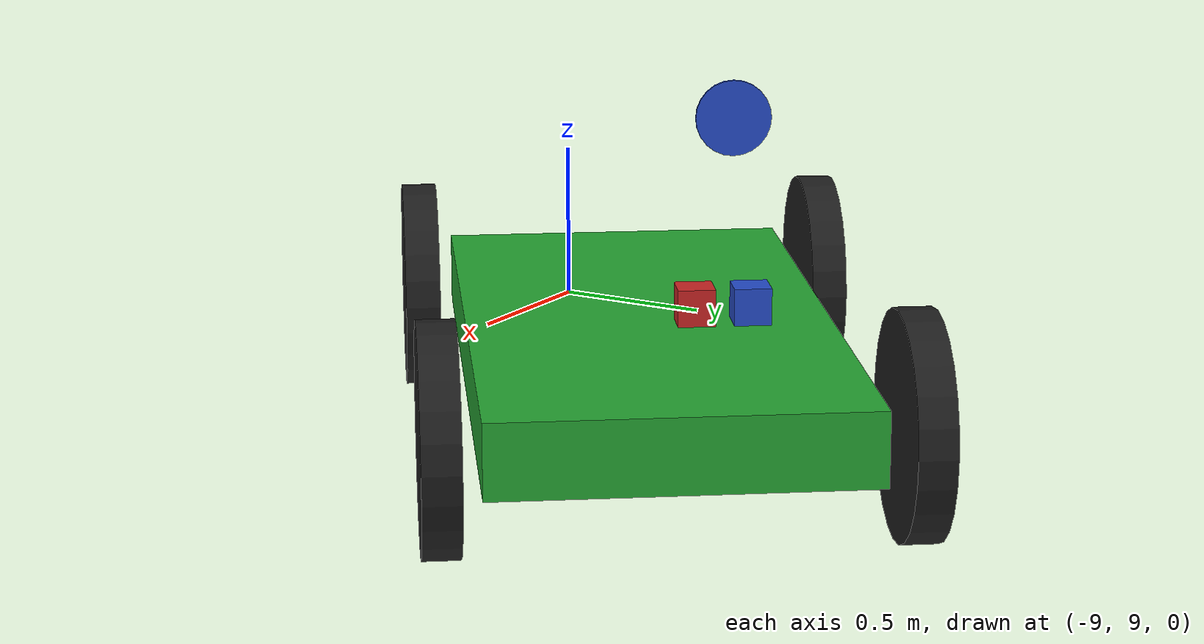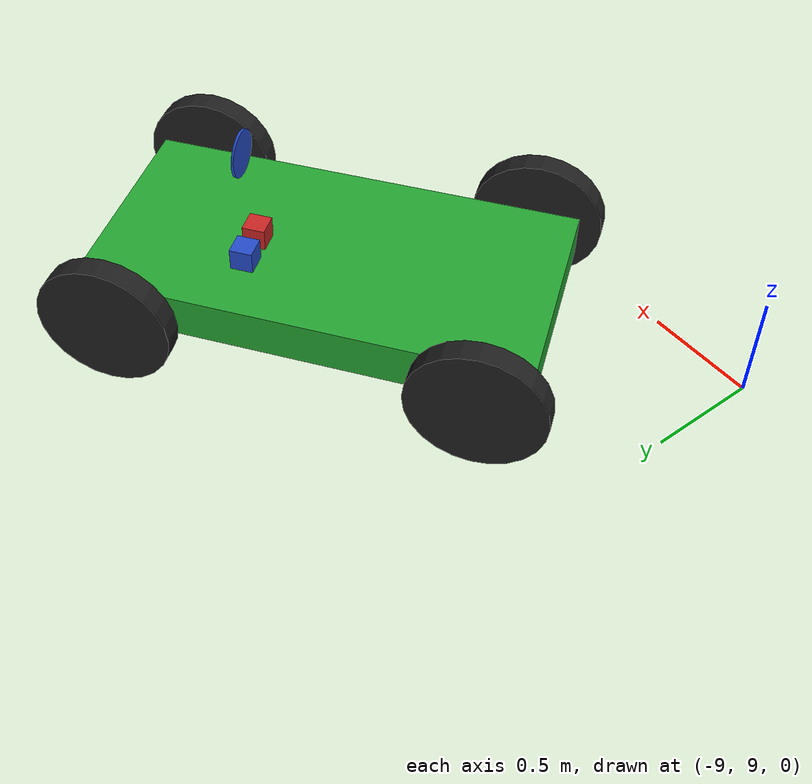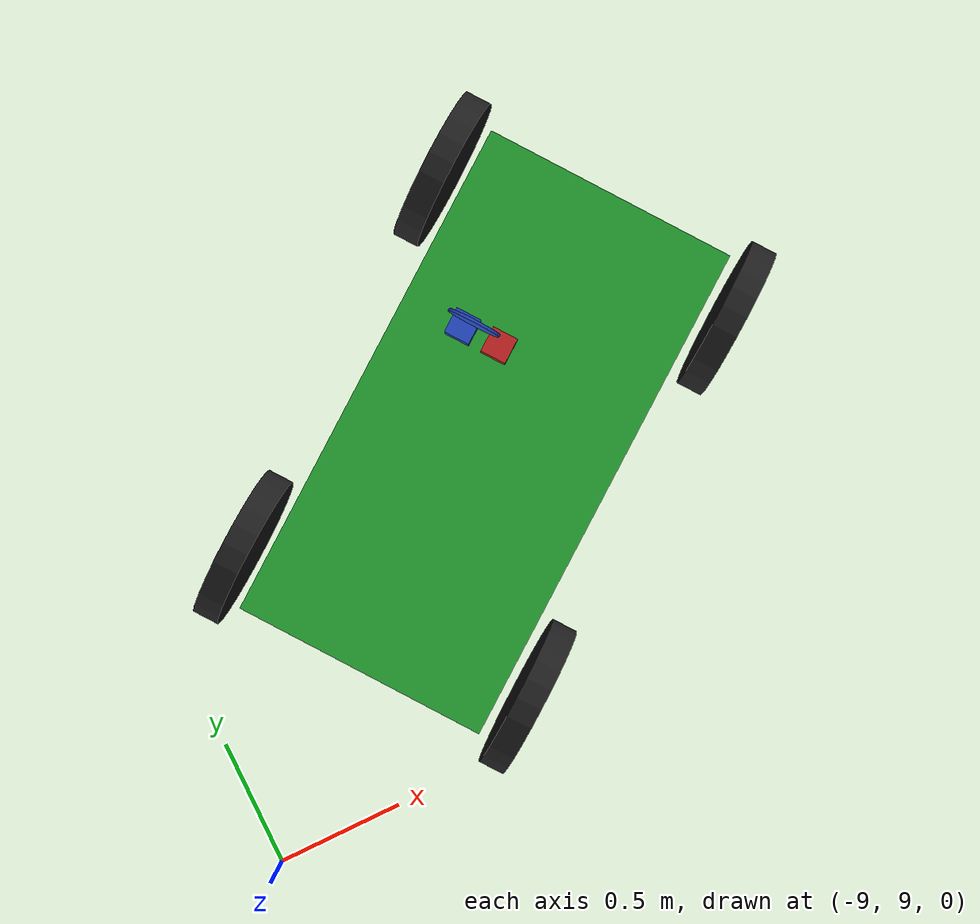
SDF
<sdf version="1.7">
 <world name="apriltag_world">
  <model name="car">
   <link name="chassis">
    <pose>0 0 0.3 0 -0 0</pose>
    <collision name="collision"><geometry><box><size>2 1 0.2</size></box></geometry></collision>
    <visual name="visual">
     <geometry><box><size>2 1 0.2</size></box></geometry>
     <material>
      <script><uri>file://media/materials/scripts/gazebo.material</uri><name>Gazebo/Green</name></script>
     </material>
    </visual>
    <inertial>
     <inertia><ixx>1</ixx><ixy>0</ixy><ixz>0</ixz><iyy>1</iyy><iyz>0</iyz><izz>1</izz></inertia>
     <mass>1</mass>
    </inertial>
   </link>
   <link name="front_left_wheel">
    <pose>0.8 0.6 0.3 -0 1.5707 1.5707</pose>
    <collision name="collision">
     <geometry><cylinder><radius>0.3</radius><length>0.1</length></cylinder></geometry>
    </collision>
    <visual name="visual">
     <geometry><cylinder><radius>0.3</radius><length>0.1</length></cylinder></geometry>
     <material>
      <script><uri>file://media/materials/scripts/gazebo.material</uri><name>Gazebo/Black</name></script>
     </material>
    </visual>
    <inertial>
     <inertia><ixx>1</ixx><ixy>0</ixy><ixz>0</ixz><iyy>1</iyy><iyz>0</iyz><izz>1</izz></inertia>
     <mass>1</mass>
    </inertial>
   </link>
   <link name="front_right_wheel">
    <pose>0.8 -0.6 0.3 -0 1.5707 1.5707</pose>
    <collision name="collision">
     <geometry><cylinder><radius>0.3</radius><length>0.1</length></cylinder></geometry>
    </collision>
    <visual name="visual">
     <geometry><cylinder><radius>0.3</radius><length>0.1</length></cylinder></geometry>
     <material>
      <script><uri>file://media/materials/scripts/gazebo.material</uri><name>Gazebo/Black</name></script>
     </material>
    </visual>
    <inertial>
     <inertia><ixx>1</ixx><ixy>0</ixy><ixz>0</ixz><iyy>1</iyy><iyz>0</iyz><izz>1</izz></inertia>
     <mass>1</mass>
    </inertial>
   </link>
   <link name="back_right_wheel">
    <pose>-0.8 -0.6 0.3 -0 1.5707 1.5707</pose>
    <collision name="collision">
     <geometry><cylinder><radius>0.3</radius><length>0.1</length></cylinder></geometry>
    </collision>
    <visual name="visual">
     <geometry><cylinder><radius>0.3</radius><length>0.1</length></cylinder></geometry>
     <material>
      <script><uri>file://media/materials/scripts/gazebo.material</uri><name>Gazebo/Black</name></script>
     </material>
    </visual>
    <inertial>
     <inertia><ixx>1</ixx><ixy>0</ixy><ixz>0</ixz><iyy>1</iyy><iyz>0</iyz><izz>1</izz></inertia>
     <mass>1</mass>
    </inertial>
   </link>
   <link name="back_left_wheel">
    <pose>-0.8 0.6 0.3 -0 1.5707 1.5707</pose>
    <collision name="collision">
     <geometry><cylinder><radius>0.3</radius><length>0.1</length></cylinder></geometry>
    </collision>
    <visual name="visual">
     <geometry><cylinder><radius>0.3</radius><length>0.1</length></cylinder></geometry>
     <material>
      <script><uri>file://media/materials/scripts/gazebo.material</uri><name>Gazebo/Black</name></script>
     </material>
    </visual>
    <inertial>
     <inertia><ixx>1</ixx><ixy>0</ixy><ixz>0</ixz><iyy>1</iyy><iyz>0</iyz><izz>1</izz></inertia>
     <mass>1</mass>
    </inertial>
   </link>
   <link name="gas_pedal">
    <pose>0.3 0.1 0.5 0 -0 0</pose>
    <collision name="collision"><geometry><box><size>0.1 0.1 0.1</size></box></geometry></collision>
    <visual name="visual">
     <geometry><box><size>0.1 0.1 0.1</size></box></geometry>
     <material>
      <script><uri>file://media/materials/scripts/gazebo.material</uri><name>Gazebo/Red</name></script>
     </material>
    </visual>
    <inertial>
     <inertia><ixx>1</ixx><ixy>0</ixy><ixz>0</ixz><iyy>1</iyy><iyz>0</iyz><izz>1</izz></inertia>
     <mass>1</mass>
    </inertial>
   </link>
   <link name="brake_pedal">
    <pose>0.3 0.25 0.5 0 -0 0</pose>
    <collision name="collision"><geometry><box><size>0.1 0.1 0.1</size></box></geometry></collision>
    <visual name="visual">
     <geometry><box><size>0.1 0.1 0.1</size></box></geometry>
     <material>
      <script><uri>file://media/materials/scripts/gazebo.material</uri><name>Gazebo/Blue</name></script>
     </material>
    </visual>
    <inertial>
     <inertia><ixx>1</ixx><ixy>0</ixy><ixz>0</ixz><iyy>1</iyy><iyz>0</iyz><izz>1</izz></inertia>
     <mass>1</mass>
    </inertial>
   </link>
   <link name="steering_wheel">
    <pose>0.3 0.2 1 0 1.5707 0</pose>
    <collision name="collision">
     <geometry><cylinder><radius>0.1</radius><length>0.01</length></cylinder></geometry>
    </collision>
    <visual name="visual">
     <geometry><cylinder><radius>0.1</radius><length>0.01</length></cylinder></geometry>
     <material>
      <script><uri>file://media/materials/scripts/gazebo.material</uri><name>Gazebo/Blue</name></script>
     </material>
    </visual>
    <inertial>
     <inertia><ixx>1</ixx><ixy>0</ixy><ixz>0</ixz><iyy>1</iyy><iyz>0</iyz><izz>1</izz></inertia>
     <mass>1</mass>
    </inertial>
   </link>
   <joint name="gas_joint" type="prismatic">
    <parent>chassis</parent>
    <child>gas_pedal</child>
    <axis>
     <xyz expressed_in="__model__">1 0 0</xyz>
     <limit><lower>0</lower><upper>0.2</upper></limit>
     <dynamics><spring_reference>0</spring_reference><spring_stiffness>0</spring_stiffness></dynamics>
    </axis>
   </joint>
   <joint name="brake_joint" type="prismatic">
    <parent>chassis</parent>
    <child>brake_pedal</child>
    <axis>
     <xyz expressed_in="__model__">1 0 0</xyz>
     <limit><lower>0</lower><upper>0.2</upper></limit>
     <dynamics><spring_reference>0</spring_reference><spring_stiffness>0</spring_stiffness></dynamics>
    </axis>
   </joint>
   <joint name="steering_joint" type="revolute">
    <parent>chassis</parent>
    <child>steering_wheel</child>
    <axis>
     <xyz expressed_in="__model__">1 0 0</xyz>
     <limit><lower>-7.853</lower><upper>7.853</upper></limit>
     <dynamics><spring_reference>0</spring_reference><spring_stiffness>0</spring_stiffness></dynamics>
    </axis>
   </joint>
   <joint name="front_left_joint" type="revolute2">
    <parent>chassis</parent>
    <child>front_left_wheel</child>
    <axis>
     <xyz expressed_in="__model__">0 0 1</xyz>
     <limit><lower>-0.000328688</lower><upper>-0.000328688</upper></limit>
     <dynamics><spring_reference>0</spring_reference><spring_stiffness>0</spring_stiffness></dynamics>
    </axis>
    <axis2>
     <xyz expressed_in="__model__">0 1 0</xyz>
     <limit><upper>1e+16</upper><lower>-1e+16</lower></limit>
     <dynamics><spring_reference>0</spring_reference><spring_stiffness>0</spring_stiffness></dynamics>
    </axis2>
    <physics><ode><limit><cfm>0</cfm><erp>0.9</erp></limit></ode></physics>
   </joint>
   <joint name="front_right_joint" type="revolute2">
    <parent>chassis</parent>
    <child>front_right_wheel</child>
    <axis>
     <xyz expressed_in="__model__">0 0 1</xyz>
     <limit><lower>-0.000328688</lower><upper>-0.000328688</upper></limit>
     <dynamics><spring_reference>0</spring_reference><spring_stiffness>0</spring_stiffness></dynamics>
    </axis>
    <axis2>
     <xyz expressed_in="__model__">0 1 0</xyz>
     <limit><upper>1e+16</upper><lower>-1e+16</lower></limit>
     <dynamics><spring_reference>0</spring_reference><spring_stiffness>0</spring_stiffness></dynamics>
    </axis2>
    <physics><ode><limit><cfm>0</cfm><erp>0.9</erp></limit></ode></physics>
   </joint>
   <joint name="back_right_joint" type="revolute2">
    <parent>chassis</parent>
    <child>back_right_wheel</child>
    <axis>
     <xyz expressed_in="__model__">0 0 1</xyz>
     <limit><lower>0</lower><upper>0</upper></limit>
     <dynamics><spring_reference>0</spring_reference><spring_stiffness>0</spring_stiffness></dynamics>
    </axis>
    <axis2>
     <xyz expressed_in="__model__">0 1 0</xyz>
     <limit><upper>1e+16</upper><lower>-1e+16</lower></limit>
     <dynamics><spring_reference>0</spring_reference><spring_stiffness>0</spring_stiffness></dynamics>
    </axis2>
    <physics><ode><limit><cfm>0</cfm><erp>0.9</erp></limit></ode></physics>
   </joint>
   <joint name="back_left_joint" type="revolute2">
    <parent>chassis</parent>
    <child>back_left_wheel</child>
    <axis>
     <xyz expressed_in="__model__">0 0 1</xyz>
     <limit><lower>0</lower><upper>0</upper></limit>
     <dynamics><spring_reference>0</spring_reference><spring_stiffness>0</spring_stiffness></dynamics>
    </axis>
    <axis2>
     <xyz expressed_in="__model__">0 1 0</xyz>
     <limit><upper>1e+16</upper><lower>-1e+16</lower></limit>
     <dynamics><spring_reference>0</spring_reference><spring_stiffness>0</spring_stiffness></dynamics>
    </axis2>
    <physics><ode><limit><cfm>0</cfm><erp>0.9</erp></limit></ode></physics>
   </joint>
   <plugin name="vehicle" filename="libVehiclePlugin.so">
    <front_left>front_left_joint</front_left>
    <front_right>front_right_joint</front_right>
    <back_left>back_left_joint</back_left>
    <back_right>back_right_joint</back_right>
    <gas>gas_joint</gas>
    <brake>brake_joint</brake>
    <steering>steering_joint</steering>
    <front_power>10</front_power>
    <rear_power>10</rear_power>
    <tire_angle_range>0.5</tire_angle_range>
    <max_speed>10</max_speed>
    <aero_load>0.1</aero_load>
   </plugin>
   <pose>-7.57275 10.1438 1.7e-05 -2e-05 4e-06 0.635053</pose>
  </model>
 </world>
</sdf>
